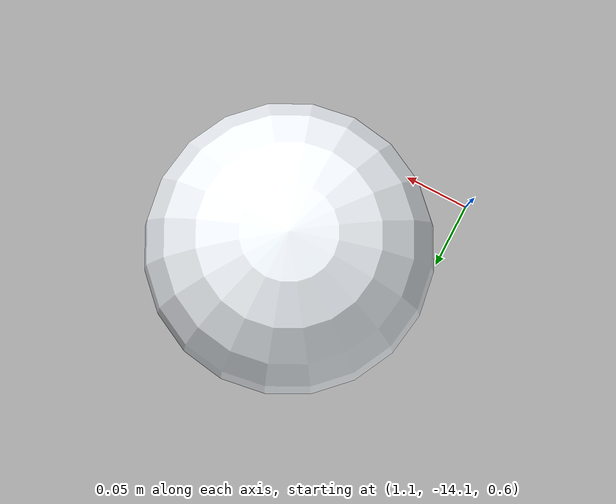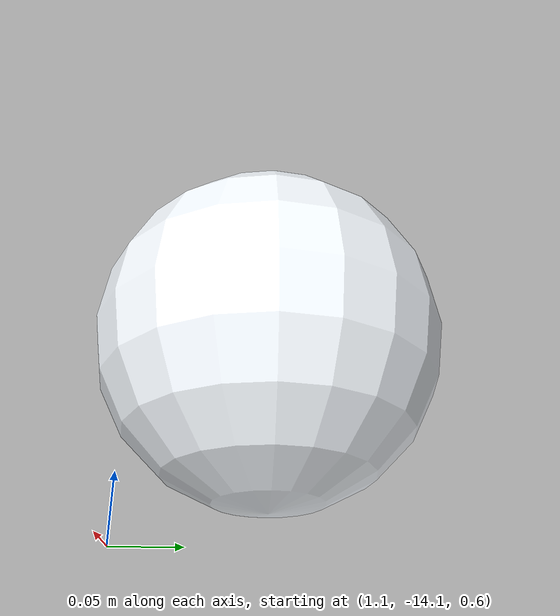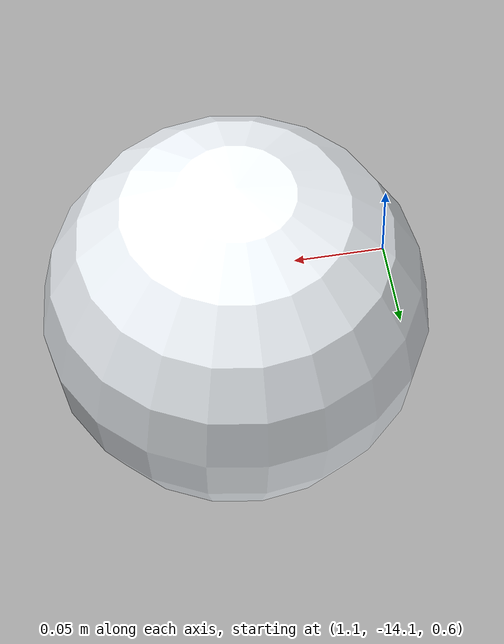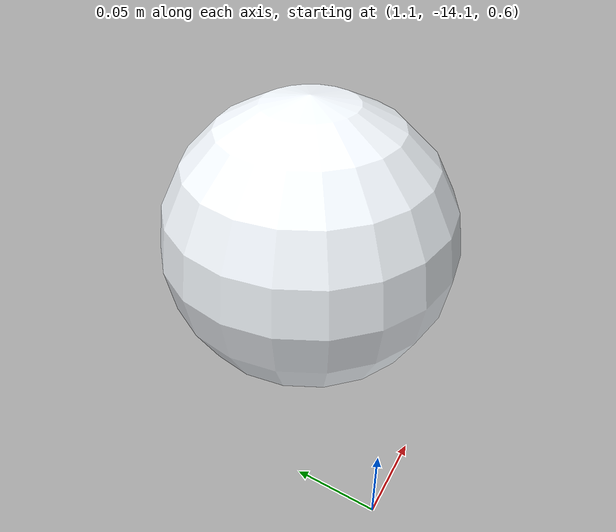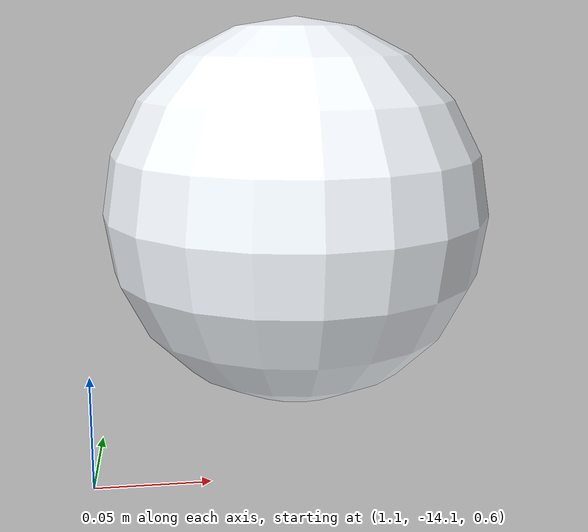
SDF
<sdf version="1.9"><model name="step3_fire_01_ball"><static>false</static><allow_auto_disable>false</allow_auto_disable><pose>1.2 -14.0 0.7 0 0 0</pose><link name="body"><gravity>false</gravity><inertial><mass>0.03</mass><inertia><ixx>.000016</ixx><iyy>.000016</iyy><izz>.000032</izz><ixy>0</ixy><ixz>0</ixz><iyz>0</iyz></inertia></inertial><visual name="extinguisher_ball"><geometry><sphere><radius>0.1</radius></sphere></geometry><material><ambient>0.96 0.98 1.0 1.0</ambient><diffuse>0.96 0.98 1.0 1.0</diffuse><emissive>0.144 0.147 0.15 1</emissive></material></visual></link><plugin filename="gz-sim-pose-publisher-system" name="gz::sim::systems::PosePublisher"><publish_link_pose>false</publish_link_pose><publish_visual_pose>false</publish_visual_pose><publish_collision_pose>false</publish_collision_pose><publish_sensor_pose>false</publish_sensor_pose><publish_model_pose>true</publish_model_pose><publish_nested_model_pose>true</publish_nested_model_pose><static_publisher>false</static_publisher><use_pose_vector_msg>true</use_pose_vector_msg><update_frequency>30</update_frequency></plugin></model></sdf>
